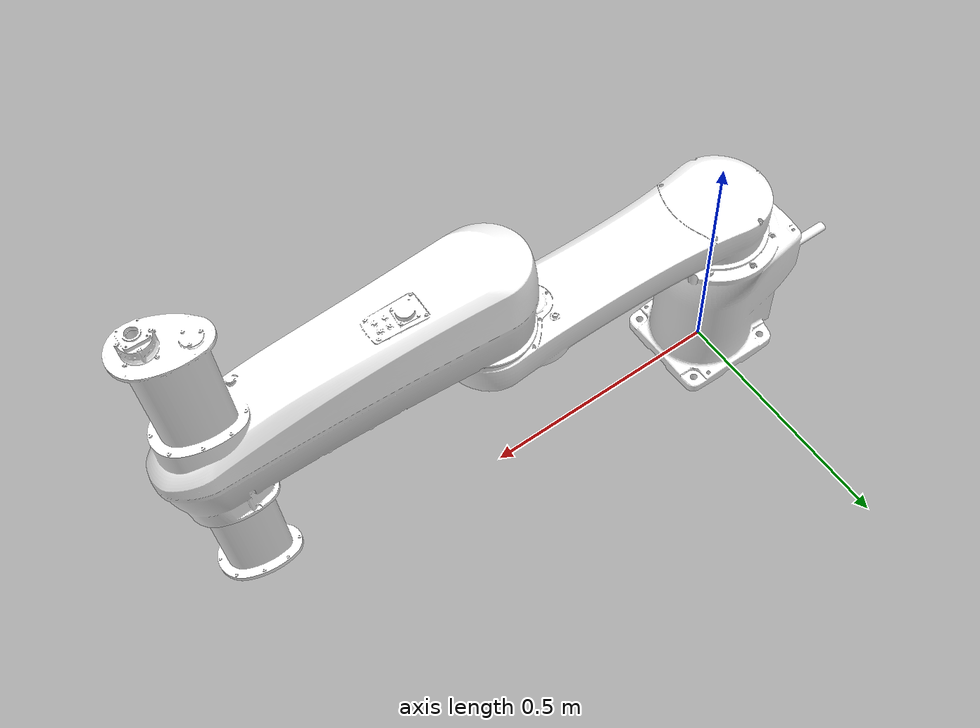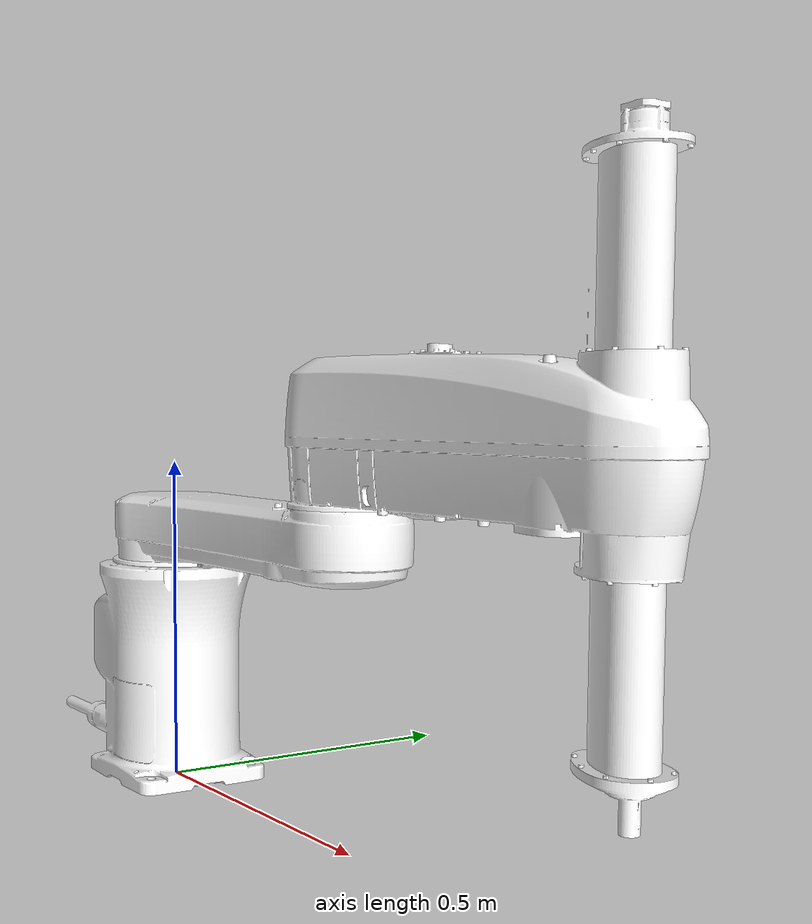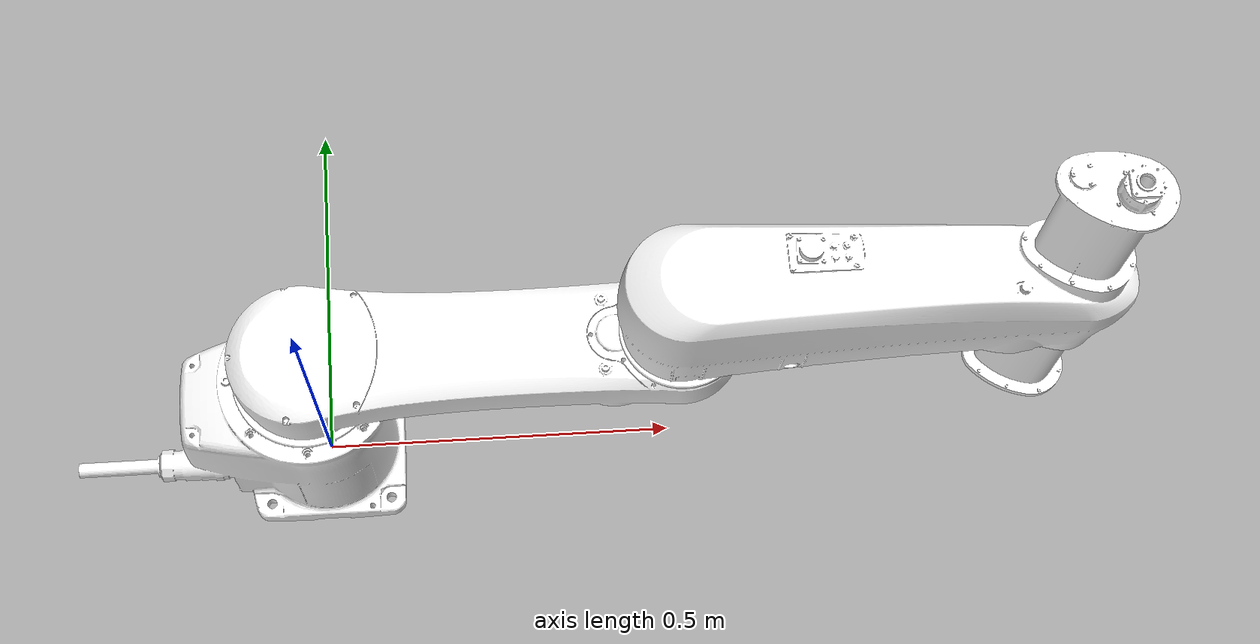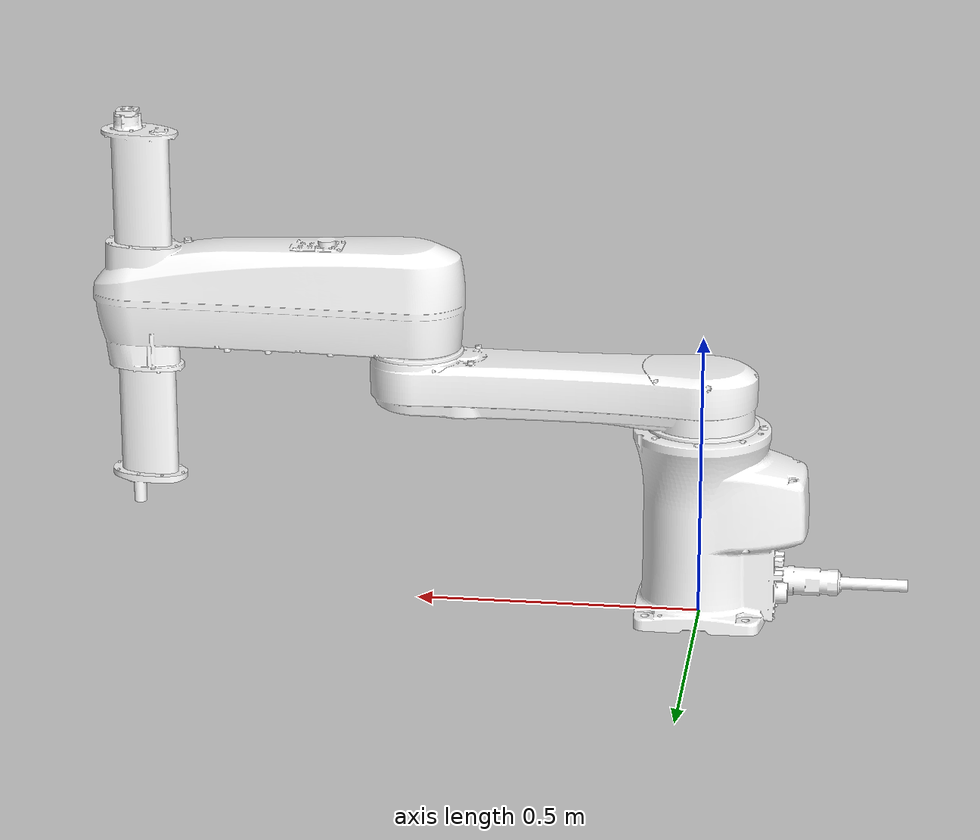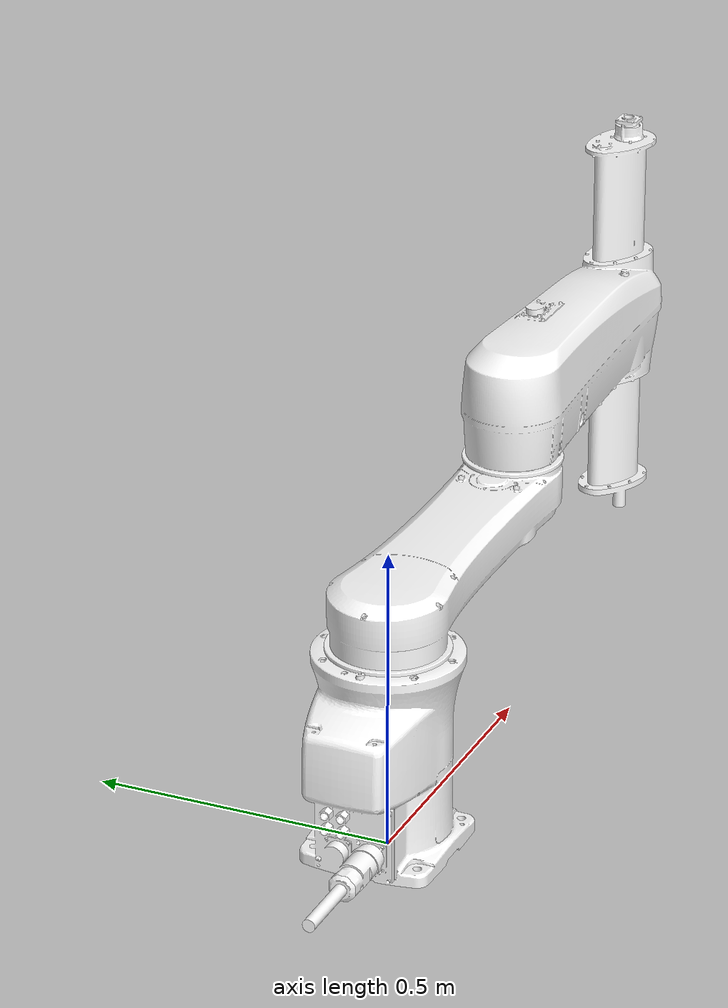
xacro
<?xml version="1.0"?>
<robot name="hm40a03w" xmlns:xacro="http://www.ros.org/wiki/xacro">
  <material name="white">
    <color rgba="1.0 1.0 1.0 1.0"/>
  </material>
  <xacro:include filename="$(find denso_robot_descriptions)/hm40a03w_description/urdf/hm40a03w.xacro"/>
  <link name="base_link"/>
  <xacro:hm40a03w parent="base_link">
    <origin xyz="0 0 0" rpy="0 0 0"/>
  </xacro:hm40a03w>
</robot>

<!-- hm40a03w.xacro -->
<!-- Copyright (C) 2021, TechMagic K.K. -->
<robot xmlns:xacro="http://www.ros.org/wiki/xacro">
  <xacro:property name="folder" value="package://denso_robot_descriptions/hm40a03w_description"/>
  <xacro:macro name="hm40a03w" params="parent *origin">
    <joint name="hm40a03w_base_joint" type="fixed">
      <xacro:insert_block name="origin"/>
      <parent link="${parent}"/>
      <child link="link_0"/>
    </joint>
    <link name="link_0">
      <visual>
	<geometry>
	  <mesh filename="${folder}/mesh/hm40a03w_0.stl" scale="0.001 0.001 0.001"/>
	</geometry>
	<material name="white"/>
      </visual>
      <collision>
	<geometry>
	  <mesh filename="${folder}/mesh/hm40a03w_0.stl" scale="0.001 0.001 0.001"/>
	</geometry>
      </collision>
      <inertial>
	<mass value="1" />
	<inertia ixx="1" ixy="0" ixz="0" iyy="1" iyz="0" izz="1" />
      </inertial>
    </link>
    <joint name="joint_1" type="revolute">
      <parent link="link_0"/>
      <child link="link_1"/>
      <origin xyz="0 0 0.343" rpy="0 0 0"/>
      <axis xyz="0 0 1" />
      <limit effort="1" lower="${-pi}" upper="${pi}" velocity="1.0" />
      <dynamics damping="0" friction="0" />
    </joint>
    <link name="link_1">
      <visual>
	<geometry>
	  <mesh filename="${folder}/mesh/hm40a03w_1.stl" scale="0.001 0.001 0.001"/>
	</geometry>
	<material name="white"/>
      </visual>
      <collision>
	<geometry>
	  <mesh filename="${folder}/mesh/hm40a03w_1.stl" scale="0.001 0.001 0.001"/>
	</geometry>
      </collision>
      <inertial>
	<mass value="1" />
	<inertia ixx="1" ixy="0" ixz="0" iyy="1" iyz="0" izz="1" />
      </inertial>
    </link>
    <joint name="joint_2" type="revolute">
      <parent link="link_1" />
      <child link="link_2" />
      <origin xyz="0.5 0.0 0.105" rpy="0 0 0"/>
      <axis xyz="0 0 1" />
      <limit effort="1" lower="-${pi}" upper="${pi}" velocity="2.61799387799149" />
      <dynamics damping="0" friction="0" />
    </joint>
    <link name="link_2">
      <visual>
	<geometry>
	  <mesh filename="${folder}/mesh/hm40a03w_2.stl" scale="0.001 0.001 0.001"/>
	</geometry>
	<material name="white"/>
      </visual>
      <collision>
	<geometry>
	  <mesh filename="${folder}/mesh/hm40a03w_2.stl" scale="0.001 0.001 0.001"/>
	</geometry>
      </collision>
      <inertial>
	<mass value="1" />
	<inertia ixx="1" ixy="0" ixz="0" iyy="1" iyz="0" izz="1" />
      </inertial>
    </link>
    <joint name="joint_3" type="prismatic">
      <parent link="link_2" />
      <child link="link_3" />
      <origin xyz="0.5 0 ${-0.105-0.343}" />
      <axis xyz="0 0 1" />
      <limit effort="1" lower="0.01" upper="0.31" velocity="1.0" />
      <dynamics damping="0" friction="0" />
    </joint>
    <link name="link_3">
      <visual>
	<geometry>
	  <mesh filename="${folder}/mesh/hm40a03w_3.stl" scale="0.001 0.001 0.001"/>
	</geometry>
	<material name="white"/>
      </visual>
      <collision>
	<geometry>
	  <mesh filename="${folder}/mesh/hm40a03w_3.stl" scale="0.001 0.001 0.001"/>
	</geometry>
      </collision>
      <inertial>
	<mass value="1" />
	<inertia ixx="1" ixy="0" ixz="0" iyy="1" iyz="0" izz="1" />
      </inertial>
    </link>
    <joint name="joint_4" type="revolute">
      <parent link="link_3" />
      <child link="link_4" />
      <origin xyz="0 0 0" rpy="0 0 0"/>
      <axis xyz="0 0 1" />
      <limit effort="1" lower="-2.705260340591211" upper="2.705260340591211" velocity="3.92699081698724" />
      <dynamics damping="0" friction="0" />
    </joint>
    <link name="link_4">
    </link>
  </xacro:macro>
</robot>
